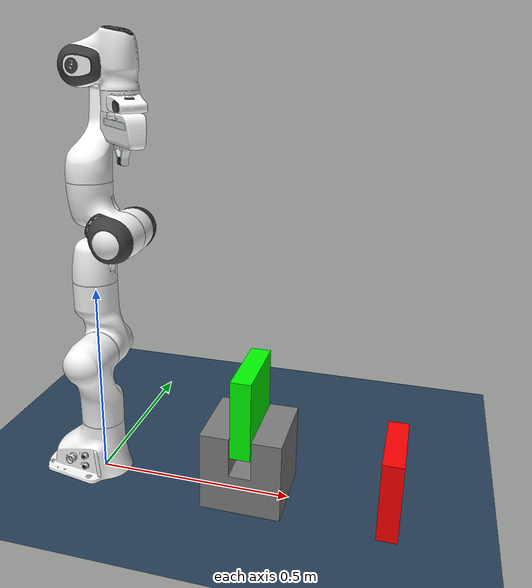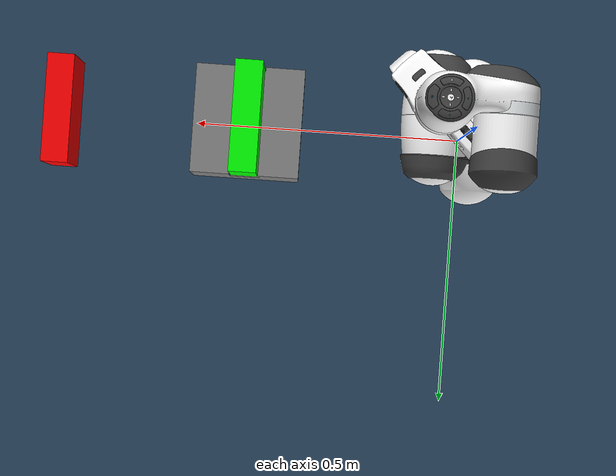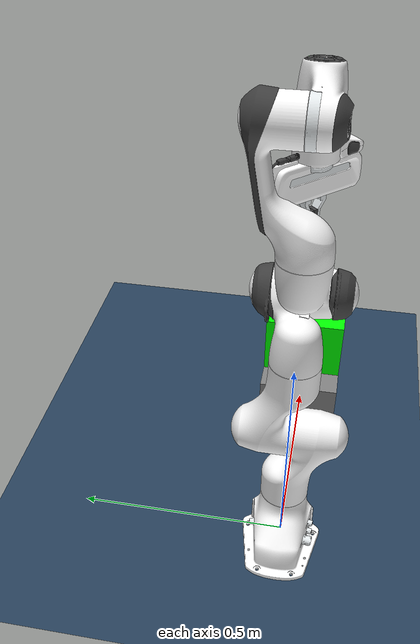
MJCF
<mujoco model="assembly scene">

  <compiler angle="radian" meshdir="assets/"/>

  <option timestep="0.005" integrator="implicitfast" iterations="5" ls_iterations="8">
    <flag eulerdamp="disable"/>
  </option>

  <size nkey="1"/>

  <visual>
    <global azimuth="120" elevation="-20"/>
    <headlight ambient="0.3 0.3 0.3" diffuse="0.6 0.6 0.6" specular="0 0 0"/>
    <scale forcewidth="0.05" contactwidth="0.075" contactheight="0.025" com="0.05" framelength="0.2" framewidth="0.01"/>
    <rgba haze="0.15 0.25 0.35 1"/>
  </visual>

  <statistic extent="1" center="0.3 0 0.4"/>

  <default>
    <default class="panda">
      <material shininess="0.25"/>
      <joint range="-2.8973 2.8973" armature="0.1" damping="1"/>
      <general ctrlrange="-2.8973 2.8973" forcerange="-100 100" biastype="affine" biasprm="0 -1"/>
      <default class="finger">
        <joint type="slide" range="0 0.04"/>
      </default>
      <default class="visual">
        <geom type="mesh" contype="0" conaffinity="0" group="2"/>
      </default>
      <default class="collision">
        <geom type="mesh" contype="0" conaffinity="0" group="3"/>
        <default class="primitive_collision">
          <geom type="box" solref="0.01" solimp="0.99 0.995 0.01"/>
          <default class="fingertip_pad_collision_1">
            <geom size="0.011 0.0075 0.01"/>
          </default>
          <default class="fingertip_pad_collision_2">
            <geom size="0.011 0.0044 0.0019"/>
          </default>
          <default class="fingertip_pad_collision_3">
            <geom size="0.00875 0.0035 0.01175"/>
          </default>
          <default class="fingertip_pad_collision_4">
            <geom size="0.00875 0.0076 0.00825" conaffinity="3"/>
          </default>
        </default>
      </default>
    </default>
    <default class="peg">
      <geom size="0.01 0.01 0.01" type="mesh" contype="0" conaffinity="0" group="2"/>
    </default>
    <default class="peg_collision">
      <geom type="box" group="3"/>
    </default>
  </default>

  <custom>
    <numeric name="max_contact_points" size="1" data="12"/>
  </custom>

  <asset>
    <texture type="skybox" builtin="gradient" rgb1="0.3 0.5 0.7" rgb2="0 0 0" width="512" height="3072"/>
    <texture type="2d" name="groundplane" builtin="checker" mark="edge" rgb1="0.2 0.3 0.4" rgb2="0.1 0.2 0.3" markrgb="0.8 0.8 0.8" width="300" height="300"/>
    <material name="white" class="panda"/>
    <material name="off_white" class="panda" rgba="0.901961 0.921569 0.929412 1"/>
    <material name="black" class="panda" rgba="0.25 0.25 0.25 1"/>
    <material name="green" class="panda" rgba="0 1 0 1"/>
    <material name="light_blue" class="panda" rgba="0.039216 0.541176 0.780392 1"/>
    <material name="groundplane" texture="groundplane" texuniform="true" texrepeat="5 5" reflectance="0.2"/>
    <mesh name="link0_c" file="link0.stl"/>
    <mesh name="link1_c" file="link1.stl"/>
    <mesh name="link2_c" file="link2.stl"/>
    <mesh name="link3_c" file="link3.stl"/>
    <mesh name="link4_c" file="link4.stl"/>
    <mesh name="link5_c0" file="link5_collision_0.obj"/>
    <mesh name="link5_c1" file="link5_collision_1.obj"/>
    <mesh name="link5_c2" file="link5_collision_2.obj"/>
    <mesh name="link6_c" file="link6.stl"/>
    <mesh name="link7_c" file="link7.stl"/>
    <mesh name="hand_c" file="hand.stl"/>
    <mesh name="link0_0" file="link0_0.obj"/>
    <mesh name="link0_1" file="link0_1.obj"/>
    <mesh name="link0_2" file="link0_2.obj"/>
    <mesh name="link0_3" file="link0_3.obj"/>
    <mesh name="link0_4" file="link0_4.obj"/>
    <mesh name="link0_5" file="link0_5.obj"/>
    <mesh name="link0_7" file="link0_7.obj"/>
    <mesh name="link0_8" file="link0_8.obj"/>
    <mesh name="link0_9" file="link0_9.obj"/>
    <mesh name="link0_10" file="link0_10.obj"/>
    <mesh name="link0_11" file="link0_11.obj"/>
    <mesh name="link1" file="link1.obj"/>
    <mesh name="link2" file="link2.obj"/>
    <mesh name="link3_0" file="link3_0.obj"/>
    <mesh name="link3_1" file="link3_1.obj"/>
    <mesh name="link3_2" file="link3_2.obj"/>
    <mesh name="link3_3" file="link3_3.obj"/>
    <mesh name="link4_0" file="link4_0.obj"/>
    <mesh name="link4_1" file="link4_1.obj"/>
    <mesh name="link4_2" file="link4_2.obj"/>
    <mesh name="link4_3" file="link4_3.obj"/>
    <mesh name="link5_0" file="link5_0.obj"/>
    <mesh name="link5_1" file="link5_1.obj"/>
    <mesh name="link5_2" file="link5_2.obj"/>
    <mesh name="link6_0" file="link6_0.obj"/>
    <mesh name="link6_1" file="link6_1.obj"/>
    <mesh name="link6_2" file="link6_2.obj"/>
    <mesh name="link6_3" file="link6_3.obj"/>
    <mesh name="link6_4" file="link6_4.obj"/>
    <mesh name="link6_5" file="link6_5.obj"/>
    <mesh name="link6_6" file="link6_6.obj"/>
    <mesh name="link6_7" file="link6_7.obj"/>
    <mesh name="link6_8" file="link6_8.obj"/>
    <mesh name="link6_9" file="link6_9.obj"/>
    <mesh name="link6_10" file="link6_10.obj"/>
    <mesh name="link6_11" file="link6_11.obj"/>
    <mesh name="link6_12" file="link6_12.obj"/>
    <mesh name="link6_13" file="link6_13.obj"/>
    <mesh name="link6_14" file="link6_14.obj"/>
    <mesh name="link6_15" file="link6_15.obj"/>
    <mesh name="link6_16" file="link6_16.obj"/>
    <mesh name="link7_0" file="link7_0.obj"/>
    <mesh name="link7_1" file="link7_1.obj"/>
    <mesh name="link7_2" file="link7_2.obj"/>
    <mesh name="link7_3" file="link7_3.obj"/>
    <mesh name="link7_4" file="link7_4.obj"/>
    <mesh name="link7_5" file="link7_5.obj"/>
    <mesh name="link7_6" file="link7_6.obj"/>
    <mesh name="link7_7" file="link7_7.obj"/>
    <mesh name="hand_0" file="hand_0.obj"/>
    <mesh name="hand_1" file="hand_1.obj"/>
    <mesh name="hand_2" file="hand_2.obj"/>
    <mesh name="hand_3" file="hand_3.obj"/>
    <mesh name="hand_4" file="hand_4.obj"/>
    <mesh name="finger_0" file="finger_0.obj"/>
    <mesh name="finger_1" file="finger_1.obj"/>
    <mesh name="hole2d" file="hole2d/hole2d.obj" scale="0.05 0.05 0.05"/>
    <mesh name="hole2d_collision_0" file="hole2d/hole2d_collision_0.obj" scale="0.05 0.05 0.05"/>
    <mesh name="hole2d_collision_1" file="hole2d/hole2d_collision_1.obj" scale="0.05 0.05 0.05"/>
    <mesh name="hole2d_collision_2" file="hole2d/hole2d_collision_2.obj" scale="0.05 0.05 0.05"/>
  </asset>

  <worldbody>
    <geom name="floor" size="0 0 0.05" type="plane" material="groundplane"/>
    <light name="top" pos="0 0 2" dir="0 0 -1" mode="trackcom"/>
    <light pos="0 0 1.5" dir="0 0 -1" directional="true"/>
    <body name="link0" childclass="panda">
      <inertial pos="-0.041018 -0.00014 0.049974" quat="0.00630474 0.751245 0.00741774 0.659952" mass="0.629769" diaginertia="0.00430465 0.00387984 0.00313051"/>
      <geom class="visual" material="off_white" mesh="link0_0"/>
      <geom class="visual" material="black" mesh="link0_1"/>
      <geom class="visual" material="off_white" mesh="link0_2"/>
      <geom class="visual" material="black" mesh="link0_3"/>
      <geom class="visual" material="off_white" mesh="link0_4"/>
      <geom class="visual" material="black" mesh="link0_5"/>
      <geom class="visual" material="white" mesh="link0_7"/>
      <geom class="visual" material="white" mesh="link0_8"/>
      <geom class="visual" material="black" mesh="link0_9"/>
      <geom class="visual" material="off_white" mesh="link0_10"/>
      <geom class="visual" material="white" mesh="link0_11"/>
      <geom class="collision" mesh="link0_c"/>
      <body name="link1" pos="0 0 0.333">
        <inertial pos="0.003875 0.002081 -0.04762" quat="0.711549 0.00634377 -0.0131124 0.702485" mass="4.97068" diaginertia="0.707137 0.703435 0.00852456"/>
        <joint name="joint1" pos="0 0 0" axis="0 0 1" damping="40"/>
        <geom class="visual" material="white" mesh="link1"/>
        <geom class="collision" mesh="link1_c"/>
        <body name="link2" quat="0.707107 -0.707107 0 0">
          <inertial pos="-0.003141 -0.02872 0.003495" quat="-0.168175 0.828366 -0.122878 0.520027" mass="0.646926" diaginertia="0.0310326 0.0283001 0.00273425"/>
          <joint name="joint2" pos="0 0 0" axis="0 0 1" range="-1.7628 1.7628" damping="40"/>
          <geom class="visual" material="white" mesh="link2"/>
          <geom class="collision" mesh="link2_c"/>
          <body name="link3" pos="0 -0.316 0" quat="0.707107 0.707107 0 0">
            <inertial pos="0.027518 0.039252 -0.066502" quat="0.662769 -0.00678331 0.252053 0.705096" mass="3.2286" diaginertia="0.0415014 0.0414793 0.00124635"/>
            <joint name="joint3" pos="0 0 0" axis="0 0 1" damping="40"/>
            <geom class="visual" material="white" mesh="link3_0"/>
            <geom class="visual" material="white" mesh="link3_1"/>
            <geom class="visual" material="white" mesh="link3_2"/>
            <geom class="visual" material="black" mesh="link3_3"/>
            <geom class="collision" mesh="link3_c"/>
            <body name="link4" pos="0.0825 0 0" quat="0.707107 0.707107 0 0">
              <inertial pos="-0.05317 0.104419 0.027454" quat="0.65058 0.529822 -0.0962034 0.535518" mass="3.5879" diaginertia="0.0349596 0.0281483 0.0106201"/>
              <joint name="joint4" pos="0 0 0" axis="0 0 1" range="-3.0718 -0.0698" damping="40"/>
              <geom class="visual" material="white" mesh="link4_0"/>
              <geom class="visual" material="white" mesh="link4_1"/>
              <geom class="visual" material="black" mesh="link4_2"/>
              <geom class="visual" material="white" mesh="link4_3"/>
              <geom class="collision" mesh="link4_c"/>
              <body name="link5" pos="-0.0825 0.384 0" quat="0.707107 -0.707107 0 0">
                <inertial pos="-0.011953 0.041065 -0.038437" quat="0.987313 -0.0121954 0.0719187 -0.141037" mass="1.22595" diaginertia="0.0367625 0.0288531 0.00803437"/>
                <joint name="joint5" pos="0 0 0" axis="0 0 1" damping="2"/>
                <geom class="visual" material="black" mesh="link5_0"/>
                <geom class="visual" material="white" mesh="link5_1"/>
                <geom class="visual" material="white" mesh="link5_2"/>
                <geom class="collision" mesh="link5_c0"/>
                <geom class="collision" mesh="link5_c1"/>
                <geom class="collision" mesh="link5_c2"/>
                <body name="link6" quat="0.707107 0.707107 0 0">
                  <inertial pos="0.060149 -0.014117 -0.010517" quat="0.101075 0.59332 0.0287227 0.798079" mass="1.66656" diaginertia="0.00584276 0.00431037 0.00159787"/>
                  <joint name="joint6" pos="0 0 0" axis="0 0 1" range="-0.0175 3.7525" damping="2"/>
                  <geom class="visual" material="off_white" mesh="link6_0"/>
                  <geom class="visual" material="white" mesh="link6_1"/>
                  <geom class="visual" material="black" mesh="link6_2"/>
                  <geom class="visual" material="white" mesh="link6_3"/>
                  <geom class="visual" material="white" mesh="link6_4"/>
                  <geom class="visual" material="white" mesh="link6_5"/>
                  <geom class="visual" material="white" mesh="link6_6"/>
                  <geom class="visual" material="light_blue" mesh="link6_7"/>
                  <geom class="visual" material="light_blue" mesh="link6_8"/>
                  <geom class="visual" material="black" mesh="link6_9"/>
                  <geom class="visual" material="black" mesh="link6_10"/>
                  <geom class="visual" material="white" mesh="link6_11"/>
                  <geom class="visual" material="green" mesh="link6_12"/>
                  <geom class="visual" material="white" mesh="link6_13"/>
                  <geom class="visual" material="black" mesh="link6_14"/>
                  <geom class="visual" material="black" mesh="link6_15"/>
                  <geom class="visual" material="white" mesh="link6_16"/>
                  <geom class="collision" mesh="link6_c"/>
                  <body name="link7" pos="0.088 0 0" quat="0.707107 0.707107 0 0">
                    <inertial pos="0.010517 -0.004252 0.061597" quat="0.992939 -0.0762041 0.0733595 -0.0537067" mass="0.735522" diaginertia="0.0127345 0.0101055 0.00451803"/>
                    <joint name="joint7" pos="0 0 0" axis="0 0 1" damping="2"/>
                    <geom class="visual" material="white" mesh="link7_0"/>
                    <geom class="visual" material="black" mesh="link7_1"/>
                    <geom class="visual" material="black" mesh="link7_2"/>
                    <geom class="visual" material="black" mesh="link7_3"/>
                    <geom class="visual" material="black" mesh="link7_4"/>
                    <geom class="visual" material="black" mesh="link7_5"/>
                    <geom class="visual" material="black" mesh="link7_6"/>
                    <geom class="visual" material="white" mesh="link7_7"/>
                    <geom class="collision" mesh="link7_c"/>
                    <body name="hand" pos="0 0 0.107" quat="0.92388 0 0 -0.382683">
                      <inertial pos="-0.01 0 0.03" mass="0.73" diaginertia="0.001 0.0025 0.0017"/>
                      <geom class="visual" material="off_white" mesh="hand_0"/>
                      <geom class="visual" material="black" mesh="hand_1"/>
                      <geom class="visual" material="black" mesh="hand_2"/>
                      <geom class="visual" material="white" mesh="hand_3"/>
                      <geom class="visual" material="off_white" mesh="hand_4"/>
                      <geom class="collision" mesh="hand_c"/>
                      <geom name="hand_capsule" class="collision" size="0.04 0.06" pos="0 0 0.03" quat="0.707107 0.707107 0 0" type="capsule" conaffinity="1"/>
                      <site name="gripper" pos="0 0 0.1"/>
                      <body name="left_finger" pos="0 0 0.0584">
                        <inertial pos="0 0 0" mass="0.015" diaginertia="2.375e-06 2.375e-06 7.5e-07"/>
                        <joint name="finger_joint1" class="finger" pos="0 0 0" axis="0 1 0" damping="10"/>
                        <geom class="visual" material="off_white" mesh="finger_0"/>
                        <geom class="visual" material="black" mesh="finger_1"/>
                        <geom class="collision" mesh="finger_0"/>
                        <geom class="fingertip_pad_collision_1" pos="0 0.0185 0.011"/>
                        <geom class="fingertip_pad_collision_2" pos="0 0.0068 0.0022"/>
                        <geom class="fingertip_pad_collision_3" pos="0 0.0159 0.02835" quat="0.970143 0.242536 0 0"/>
                        <geom name="left_finger_pad" class="fingertip_pad_collision_4" pos="0 0.00758 0.04525"/>
                      </body>
                      <body name="right_finger" pos="0 0 0.0584" quat="0 0 0 1">
                        <inertial pos="0 0 0" mass="0.015" diaginertia="2.375e-06 2.375e-06 7.5e-07"/>
                        <joint name="finger_joint2" class="finger" pos="0 0 0" axis="0 1 0" damping="10"/>
                        <geom class="visual" material="off_white" mesh="finger_0"/>
                        <geom class="visual" material="black" mesh="finger_1"/>
                        <geom class="collision" mesh="finger_0"/>
                        <geom class="fingertip_pad_collision_1" pos="0 0.0185 0.011"/>
                        <geom class="fingertip_pad_collision_2" pos="0 0.0068 0.0022"/>
                        <geom class="fingertip_pad_collision_3" pos="0 0.0159 0.02835" quat="0.970143 0.242536 0 0"/>
                        <geom name="right_finger_pad" class="fingertip_pad_collision_4" pos="0 0.00758 0.04525"/>
                      </body>
                    </body>
                  </body>
                </body>
              </body>
            </body>
          </body>
        </body>
      </body>
    </body>
    <body name="peg" pos="0.4 0 0.25">
      <joint type="free" limited="false" actuatorfrclimited="false"/>
      <geom name="peg" size="0.025 0.1 0.1" type="box" contype="2" friction="1 0.03 0.003" solref="0.01" rgba="0 1 0 1"/>
    </body>
    <body name="hole" pos="0.4 0 0.1" quat="0.707105 0.707108 0 0">
      <geom name="hole" class="visual" mesh="hole2d"/>
      <geom class="peg_collision" size="0.0500036 0.0999975 0.100009" pos="1.51465e-10 -0.0499941 -5.66566e-11" quat="0.707107 -5.6768e-06 -5.6768e-06 0.707107" rgba="0.76096 0.179196 0.776212 1"/>
      <geom class="peg_collision" size="0.0362187 0.0499864 0.100013" pos="0.0637789 0.0500038 6.40986e-11" rgba="0.345306 0.103829 0.504207 1"/>
      <geom class="peg_collision" size="0.0362187 0.0499864 0.100013" pos="-0.0637789 0.0500038 1.1642e-09" rgba="0.8428 0.505815 0.211787 1"/>
    </body>
    <body name="camera" pos="0 0 0.1">
      <camera name="main" pos="0.3 -1.5 0.4" quat="0.707107 0.707107 0 0" orthographic="true" fovy="1.1"/>
    </body>
    <body pos="0.75 0 0.1">
      <joint type="free" limited="false" actuatorfrclimited="false"/>
      <geom name="peg2" size="0.025 0.1 0.1" type="box" rgba="1 0 0 1"/>
    </body>
  </worldbody>

  <equality>
    <joint joint1="finger_joint1" joint2="finger_joint2" polycoef="0 1 0 0 0" solref="0.005" solimp="0.95 0.99"/>
  </equality>

  <actuator>
    <general name="actuator1" class="panda" joint="joint1" gainprm="1000" biasprm="0 -1000 -20"/>
    <general name="actuator2" class="panda" joint="joint2" ctrlrange="-1.7628 1.7628" gainprm="1000" biasprm="0 -1000 -20"/>
    <general name="actuator3" class="panda" joint="joint3" gainprm="750" biasprm="0 -750 -4"/>
    <general name="actuator4" class="panda" joint="joint4" ctrlrange="-3.0718 -0.0698" gainprm="750" biasprm="0 -750 -4"/>
    <general name="actuator5" class="panda" joint="joint5" forcerange="-12 12" gainprm="300" biasprm="0 -300 -2"/>
    <general name="actuator6" class="panda" joint="joint6" ctrlrange="-0.0175 3.7525" forcerange="-12 12" gainprm="300" biasprm="0 -300 -2"/>
    <general name="actuator7" class="panda" joint="joint7" forcerange="-12 12" gainprm="300" biasprm="0 -300 -2"/>
    <general name="actuator8" class="panda" joint="finger_joint1" ctrlrange="0 0.04" forcerange="-200 200" gainprm="350" biasprm="0 -350 -10"/>
  </actuator>

  <keyframe>
    <key name="home" qpos="0 0.3 0 -1.57079 0 2 -0.7853 0.04 0.04 0.8 0 0.1 1 0 0 0 0.6 0 0.1 1 0 0 0" ctrl="0 0.3 0 -1.57079 0 2 -0.7853 0.04"/>
  </keyframe>
</mujoco>
